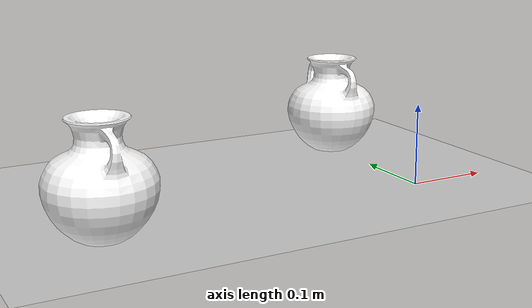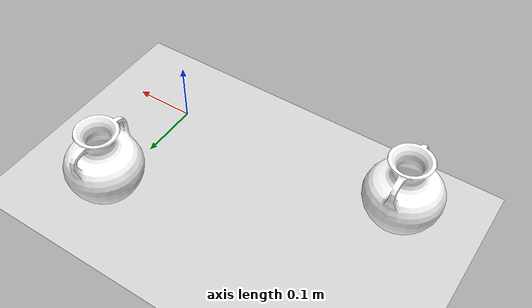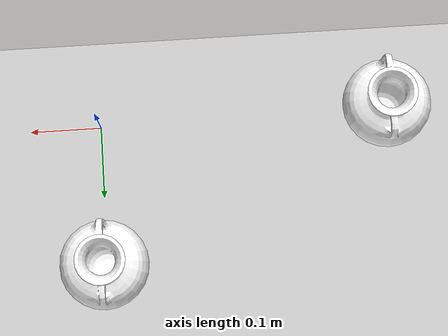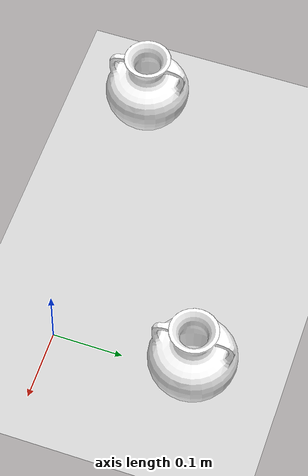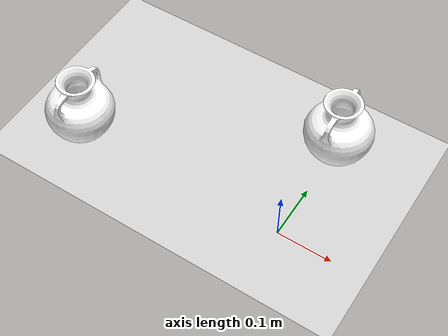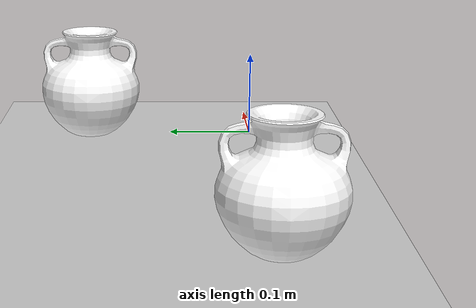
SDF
<?xml version="1.0" ?>
<sdf version="1.7">
  <world name="panda_world">
    <physics name="1ms" type="ignored">
      <max_step_size>0.001</max_step_size>
      <real_time_factor>1.0</real_time_factor>
    </physics>
    <plugin
      filename="ignition-gazebo-physics-system"
      name="ignition::gazebo::systems::Physics">
    </plugin>
    <plugin
      filename="ignition-gazebo-user-commands-system"
      name="ignition::gazebo::systems::UserCommands">
    </plugin>
    <plugin
      filename="ignition-gazebo-scene-broadcaster-system"
      name="ignition::gazebo::systems::SceneBroadcaster">
    </plugin>

    <gui fullscreen="0">

      <!-- 3D scene -->
      <plugin filename="GzScene3D" name="3D View">
        <ignition-gui>
          <title>3D View</title>
          <property type="bool" key="showTitleBar">false</property>
          <property type="string" key="state">docked</property>
        </ignition-gui>

        <engine>ogre2</engine>
        <scene>scene</scene>
        <ambient_light>0.4 0.4 0.4</ambient_light>
        <background_color>0.8 0.8 0.8</background_color>
        <camera_pose>2 2 2 0 0.5 -2.5</camera_pose>
      </plugin>

      <!-- World control -->
      <plugin filename="WorldControl" name="World control">
        <ignition-gui>
          <title>World control</title>
          <property type="bool" key="showTitleBar">false</property>
          <property type="bool" key="resizable">false</property>
          <property type="double" key="height">72</property>
          <property type="double" key="width">121</property>
          <property type="double" key="z">1</property>

          <property type="string" key="state">floating</property>
          <anchors target="3D View">
            <line own="left" target="left"/>
            <line own="bottom" target="bottom"/>
          </anchors>
        </ignition-gui>

        <play_pause>true</play_pause>
        <step>true</step>
        <start_paused>true</start_paused>

      </plugin>

      <!-- World statistics -->
      <plugin filename="WorldStats" name="World stats">
        <ignition-gui>
          <title>World stats</title>
          <property type="bool" key="showTitleBar">false</property>
          <property type="bool" key="resizable">false</property>
          <property type="double" key="height">110</property>
          <property type="double" key="width">290</property>
          <property type="double" key="z">1</property>

          <property type="string" key="state">floating</property>
          <anchors target="3D View">
            <line own="right" target="right"/>
            <line own="bottom" target="bottom"/>
          </anchors>
        </ignition-gui>

        <sim_time>true</sim_time>
        <real_time>true</real_time>
        <real_time_factor>true</real_time_factor>
        <iterations>true</iterations>
      </plugin>
    </gui>

    <light type="directional" name="sun">
      <cast_shadows>true</cast_shadows>
      <pose>0 0 10 0 0 0</pose>
      <diffuse>0.8 0.8 0.8 1</diffuse>
      <specular>0.2 0.2 0.2 1</specular>
      <attenuation>
        <range>1000</range>
        <constant>0.9</constant>
        <linear>0.01</linear>
        <quadratic>0.001</quadratic>
      </attenuation>
      <direction>-0.5 0.1 -0.9</direction>
    </light>

    <model name="ground_plane">
      <static>true</static>
      <link name="link">
        <collision name="collision">
          <geometry>
            <plane>
              <normal>0 0 1</normal>
              <size>100 100</size>
            </plane>
          </geometry>
        </collision>
        <visual name="visual">
          <geometry>
            <plane>
              <normal>0 0 1</normal>
              <size>100 100</size>
            </plane>
          </geometry>
          <material>
            <ambient>0.8 0.8 0.8 1</ambient>
            <diffuse>0.8 0.8 0.8 1</diffuse>
            <specular>0.8 0.8 0.8 1</specular>
          </material>
        </visual>
      </link>
    </model>

    <include>
      <uri>
        file:///app/src/cyton_bringup/worlds/models/vase_2/model.sdf
      </uri>
      <pose>-0.4 0 0 0 0 1.57</pose>
    </include>

    <include>
      <uri>
        file:///app/src/cyton_bringup/worlds/models/bin_4_dropping_task/model.sdf
      </uri>
      <pose> 0 0.2 0 0 0 1.57</pose>
    </include>

  </world>
</sdf>

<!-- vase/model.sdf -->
<sdf version="1.6">
  <model name="Pot01">
    <static>false</static>
    <link name="base_link">
      <collision name="collision">
        <pose>0 0 0 0 0 0</pose>
        <geometry>
          <mesh>
            <uri>meshes/Pot01.dae</uri>
            <scale>0.2 0.2 0.2</scale>
          </mesh>
        </geometry>
      </collision>
      <visual name= "Pot01_visual">
        <geometry>
          <mesh>
            <uri>meshes/Pot01.dae</uri>
            <scale>0.2 0.2 0.2</scale>
            <submesh>
              <name>Pot01</name>
              <center>false</center>
            </submesh>
          </mesh>
        </geometry>
        <material>
          <diffuse>1.0 1.0 1.0</diffuse>
          <specular>1.0 1.0 1.0</specular>
          <pbr>
            <metal>
              <albedo_map>materials/textures/Pot01_Albedo.png</albedo_map>
              <normal_map>materials/textures/Pot01_Normal.png</normal_map>
              <roughness_map>materials/textures/Pot01_Roughness.png</roughness_map>
            </metal>
          </pbr>
          <!-- fallback to script if no PBR support-->
          <script>
            <uri>materials/scripts/</uri>
            <uri>materials/textures/</uri>
            <name>UrbanTile/Pot01_Diffuse</name>
          </script>
        </material>
      </visual>
    </link>
  </model>
</sdf>
